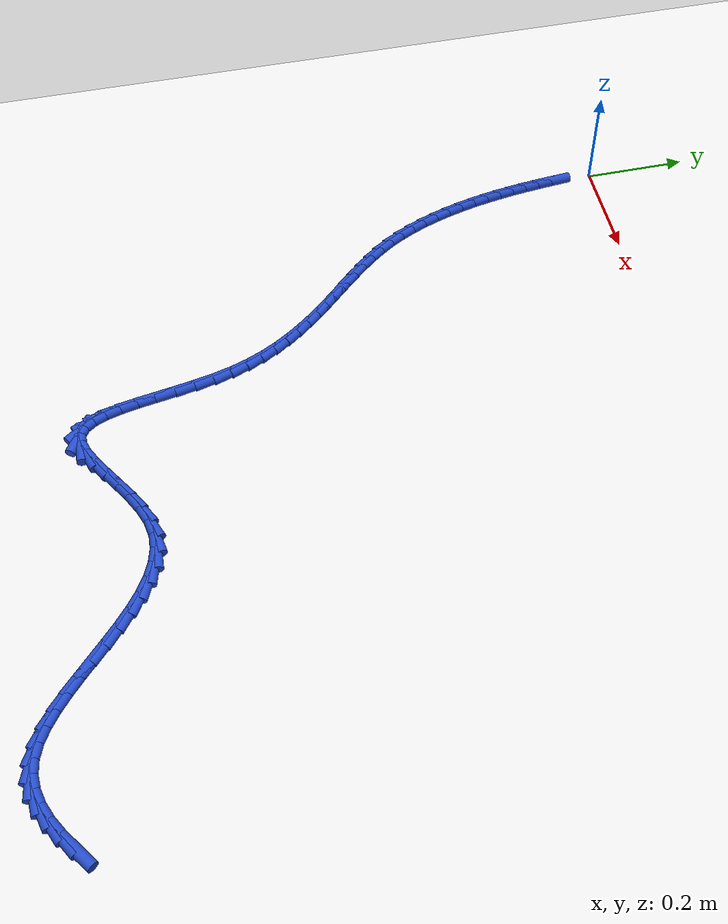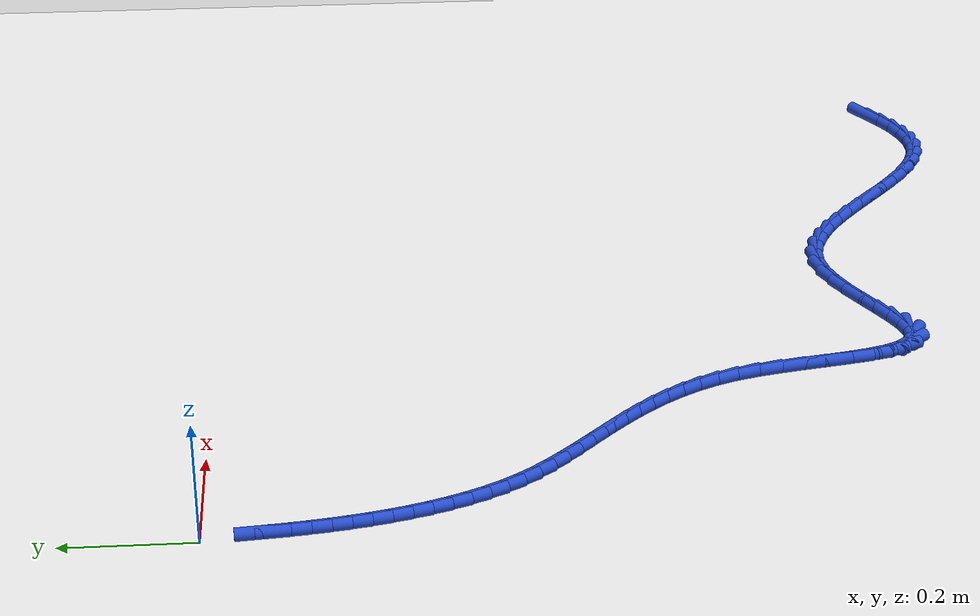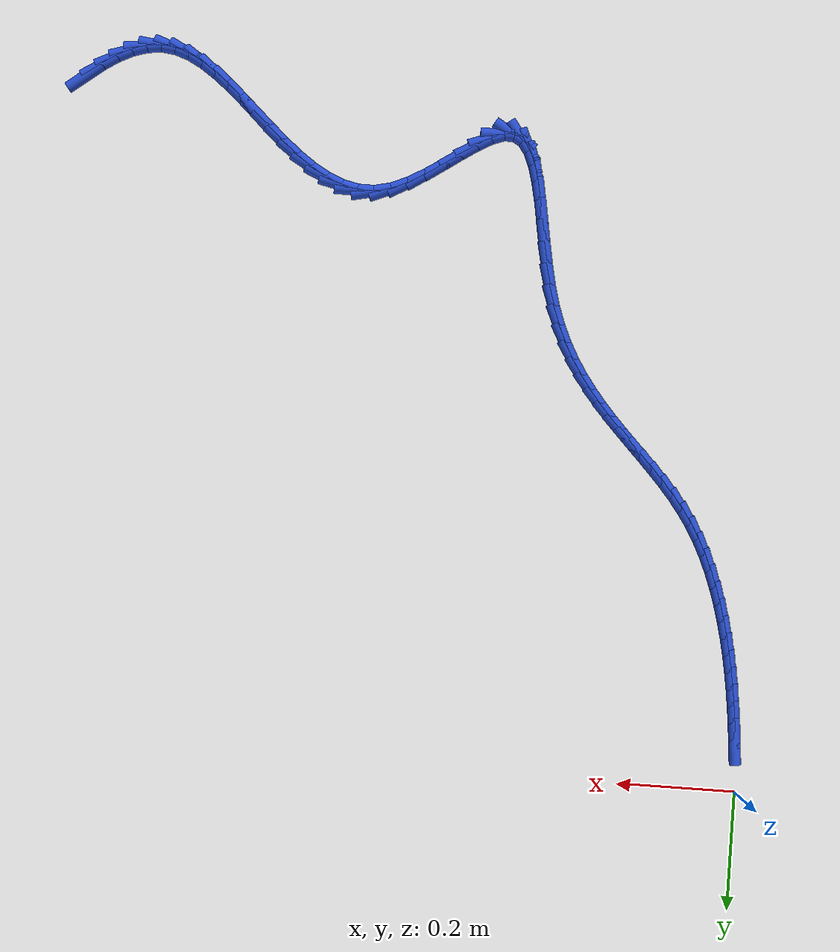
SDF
<sdf version="1.6">
 <world name="default">
  <model name="ground_plane">
   <static>1</static>
   <link name="link">
    <collision name="collision">
     <geometry><plane><normal>0 0 1</normal><size>100 100</size></plane></geometry>
     <surface><friction><ode><mu>100</mu><mu2>50</mu2></ode></friction></surface>
    </collision>
    <visual name="visual">
     <cast_shadows>0</cast_shadows>
     <geometry><plane><normal>0 0 1</normal><size>100 100</size></plane></geometry>
     <material>
      <script><uri>file://media/materials/scripts/gazebo.material</uri><name>Gazebo/WhiteGlow</name></script>
     </material>
    </visual>
   </link>
  </model>
  <model name="line">
   <link name="link_200">
    <pose>1.1708463890035192 -1.1367669506415619 0.01 0 1.57 0.6574059100987695</pose>
    <collision name="collision">
     <geometry><cylinder><radius>0.01</radius><length>0.08</length></cylinder></geometry>
    </collision>
    <visual name="visual">
     <material>
      <script><name>Gazebo/Blue</name><uri>file://media/materials/scripts/gazebo.material</uri></script>
     </material>
     <geometry><cylinder><radius>0.01</radius><length>0.08</length></cylinder></geometry>
    </visual>
   </link>
   <link name="link_201">
    <pose>1.146443476456671 -1.1556049411198688 0.01 0 1.57 0.5654308349131332</pose>
    <collision name="collision">
     <geometry><cylinder><radius>0.01</radius><length>0.08</length></cylinder></geometry>
    </collision>
    <visual name="visual">
     <material>
      <script><name>Gazebo/Blue</name><uri>file://media/materials/scripts/gazebo.material</uri></script>
     </material>
     <geometry><cylinder><radius>0.01</radius><length>0.08</length></cylinder></geometry>
    </visual>
   </link>
   <link name="link_202">
    <pose>1.12190557429925 -1.171175245292618 0.01 0 1.57 0.44600210805185686</pose>
    <collision name="collision">
     <geometry><cylinder><radius>0.01</radius><length>0.08</length></cylinder></geometry>
    </collision>
    <visual name="visual">
     <material>
      <script><name>Gazebo/Blue</name><uri>file://media/materials/scripts/gazebo.material</uri></script>
     </material>
     <geometry><cylinder><radius>0.01</radius><length>0.08</length></cylinder></geometry>
    </visual>
   </link>
   <link name="link_203">
    <pose>1.0973167457102828 -1.1829319947180632 0.01 0 1.57 0.29260035364586207</pose>
    <collision name="collision">
     <geometry><cylinder><radius>0.01</radius><length>0.08</length></cylinder></geometry>
    </collision>
    <visual name="visual">
     <material>
      <script><name>Gazebo/Blue</name><uri>file://media/materials/scripts/gazebo.material</uri></script>
     </material>
     <geometry><cylinder><radius>0.01</radius><length>0.08</length></cylinder></geometry>
    </visual>
   </link>
   <link name="link_204">
    <pose>1.0727610538687935 -1.1903293209544596 0.01 0 1.57 0.10162044880840838</pose>
    <collision name="collision">
     <geometry><cylinder><radius>0.01</radius><length>0.08</length></cylinder></geometry>
    </collision>
    <visual name="visual">
     <material>
      <script><name>Gazebo/Blue</name><uri>file://media/materials/scripts/gazebo.material</uri></script>
     </material>
     <geometry><cylinder><radius>0.01</radius><length>0.08</length></cylinder></geometry>
    </visual>
   </link>
   <link name="link_205">
    <pose>1.048322561953806 -1.1928213555600613 0.01 0 1.57 -0.120702316949975</pose>
    <collision name="collision">
     <geometry><cylinder><radius>0.01</radius><length>0.08</length></cylinder></geometry>
    </collision>
    <visual name="visual">
     <material>
      <script><name>Gazebo/Blue</name><uri>file://media/materials/scripts/gazebo.material</uri></script>
     </material>
     <geometry><cylinder><radius>0.01</radius><length>0.08</length></cylinder></geometry>
    </visual>
   </link>
   <link name="link_206">
    <pose>1.0240832230121522 -1.189881319457902 0.01 0 1.57 -0.332118778977733</pose>
    <collision name="collision">
     <geometry><cylinder><radius>0.01</radius><length>0.08</length></cylinder></geometry>
    </collision>
    <visual name="visual">
     <material>
      <script><name>Gazebo/Blue</name><uri>file://media/materials/scripts/gazebo.material</uri></script>
     </material>
     <geometry><cylinder><radius>0.01</radius><length>0.08</length></cylinder></geometry>
    </visual>
   </link>
   <link name="link_207">
    <pose>1.000057286133325 -1.181594919149552 0.01 0 1.57 -0.49268791195023254</pose>
    <collision name="collision">
     <geometry><cylinder><radius>0.01</radius><length>0.08</length></cylinder></geometry>
    </collision>
    <visual name="visual">
     <material>
      <script><name>Gazebo/Blue</name><uri>file://media/materials/scripts/gazebo.material</uri></script>
     </material>
     <geometry><cylinder><radius>0.01</radius><length>0.08</length></cylinder></geometry>
    </visual>
   </link>
   <link name="link_208">
    <pose>0.9761785433722953 -1.1687757177535312 0.01 0 1.57 -0.606039997069771</pose>
    <collision name="collision">
     <geometry><cylinder><radius>0.01</radius><length>0.08</length></cylinder></geometry>
    </collision>
    <visual name="visual">
     <material>
      <script><name>Gazebo/Blue</name><uri>file://media/materials/scripts/gazebo.material</uri></script>
     </material>
     <geometry><cylinder><radius>0.01</radius><length>0.08</length></cylinder></geometry>
    </visual>
   </link>
   <link name="link_209">
    <pose>0.9523761021991188 -1.1522796576053513 0.01 0 1.57 -0.681857930523067</pose>
    <collision name="collision">
     <geometry><cylinder><radius>0.01</radius><length>0.08</length></cylinder></geometry>
    </collision>
    <visual name="visual">
     <material>
      <script><name>Gazebo/Blue</name><uri>file://media/materials/scripts/gazebo.material</uri></script>
     </material>
     <geometry><cylinder><radius>0.01</radius><length>0.08</length></cylinder></geometry>
    </visual>
   </link>
   <link name="link_210">
    <pose>0.9285790700838554 -1.1329626810405264 0.01 0 1.57 -0.7282979259439852</pose>
    <collision name="collision">
     <geometry><cylinder><radius>0.01</radius><length>0.08</length></cylinder></geometry>
    </collision>
    <visual name="visual">
     <material>
      <script><name>Gazebo/Blue</name><uri>file://media/materials/scripts/gazebo.material</uri></script>
     </material>
     <geometry><cylinder><radius>0.01</radius><length>0.08</length></cylinder></geometry>
    </visual>
   </link>
   <link name="link_211">
    <pose>0.9047165544965615 -1.111680730394569 0.01 0 1.57 -0.7507512539377706</pose>
    <collision name="collision">
     <geometry><cylinder><radius>0.01</radius><length>0.08</length></cylinder></geometry>
    </collision>
    <visual name="visual">
     <material>
      <script><name>Gazebo/Blue</name><uri>file://media/materials/scripts/gazebo.material</uri></script>
     </material>
     <geometry><cylinder><radius>0.01</radius><length>0.08</length></cylinder></geometry>
    </visual>
   </link>
   <link name="link_212">
    <pose>0.8807176629072969 -1.0892897480029928 0.01 0 1.57 -0.7520683423218283</pose>
    <collision name="collision">
     <geometry><cylinder><radius>0.01</radius><length>0.08</length></cylinder></geometry>
    </collision>
    <visual name="visual">
     <material>
      <script><name>Gazebo/Blue</name><uri>file://media/materials/scripts/gazebo.material</uri></script>
     </material>
     <geometry><cylinder><radius>0.01</radius><length>0.08</length></cylinder></geometry>
    </visual>
   </link>
   <link name="link_213">
    <pose>0.8565115027861177 -1.0666456762013106 0.01 0 1.57 -0.7329353554186832</pose>
    <collision name="collision">
     <geometry><cylinder><radius>0.01</radius><length>0.08</length></cylinder></geometry>
    </collision>
    <visual name="visual">
     <material>
      <script><name>Gazebo/Blue</name><uri>file://media/materials/scripts/gazebo.material</uri></script>
     </material>
     <geometry><cylinder><radius>0.01</radius><length>0.08</length></cylinder></geometry>
    </visual>
   </link>
   <link name="link_214">
    <pose>0.8320271816030834 -1.0446044573250357 0.01 0 1.57 -0.6920693695669294</pose>
    <collision name="collision">
     <geometry><cylinder><radius>0.01</radius><length>0.08</length></cylinder></geometry>
    </collision>
    <visual name="visual">
     <material>
      <script><name>Gazebo/Blue</name><uri>file://media/materials/scripts/gazebo.material</uri></script>
     </material>
     <geometry><cylinder><radius>0.01</radius><length>0.08</length></cylinder></geometry>
    </visual>
   </link>
   <link name="link_215">
    <pose>0.8071938068282517 -1.0240220337096813 0.01 0 1.57 -0.6262439224082714</pose>
    <collision name="collision">
     <geometry><cylinder><radius>0.01</radius><length>0.08</length></cylinder></geometry>
    </collision>
    <visual name="visual">
     <material>
      <script><name>Gazebo/Blue</name><uri>file://media/materials/scripts/gazebo.material</uri></script>
     </material>
     <geometry><cylinder><radius>0.01</radius><length>0.08</length></cylinder></geometry>
    </visual>
   </link>
   <link name="link_216">
    <pose>0.7819404859316791 -1.005754347690759 0.01 0 1.57 -0.530377713950852</pose>
    <collision name="collision">
     <geometry><cylinder><radius>0.01</radius><length>0.08</length></cylinder></geometry>
    </collision>
    <visual name="visual">
     <material>
      <script><name>Gazebo/Blue</name><uri>file://media/materials/scripts/gazebo.material</uri></script>
     </material>
     <geometry><cylinder><radius>0.01</radius><length>0.08</length></cylinder></geometry>
    </visual>
   </link>
   <link name="link_217">
    <pose>0.7561963263834255 -0.9906573416037838 0.01 0 1.57 -0.3983357734455049</pose>
    <collision name="collision">
     <geometry><cylinder><radius>0.01</radius><length>0.08</length></cylinder></geometry>
    </collision>
    <visual name="visual">
     <material>
      <script><name>Gazebo/Blue</name><uri>file://media/materials/scripts/gazebo.material</uri></script>
     </material>
     <geometry><cylinder><radius>0.01</radius><length>0.08</length></cylinder></geometry>
    </visual>
   </link>
   <link name="link_218">
    <pose>0.7298904356535473 -0.9795869577842675 0.01 0 1.57 -0.22578493879555625</pose>
    <collision name="collision">
     <geometry><cylinder><radius>0.01</radius><length>0.08</length></cylinder></geometry>
    </collision>
    <visual name="visual">
     <material>
      <script><name>Gazebo/Blue</name><uri>file://media/materials/scripts/gazebo.material</uri></script>
     </material>
     <geometry><cylinder><radius>0.01</radius><length>0.08</length></cylinder></geometry>
    </visual>
   </link>
   <link name="link_219">
    <pose>0.7029519212121043 -0.9733991385677246 0.01 0 1.57 -0.016253245569164774</pose>
    <collision name="collision">
     <geometry><cylinder><radius>0.01</radius><length>0.08</length></cylinder></geometry>
    </collision>
    <visual name="visual">
     <material>
      <script><name>Gazebo/Blue</name><uri>file://media/materials/scripts/gazebo.material</uri></script>
     </material>
     <geometry><cylinder><radius>0.01</radius><length>0.08</length></cylinder></geometry>
    </visual>
   </link>
   <link name="link_220">
    <pose>0.6753098905291525 -0.9729498262896668 0.01 0 1.57 0.2111452177237935</pose>
    <collision name="collision">
     <geometry><cylinder><radius>0.01</radius><length>0.08</length></cylinder></geometry>
    </collision>
    <visual name="visual">
     <material>
      <script><name>Gazebo/Blue</name><uri>file://media/materials/scripts/gazebo.material</uri></script>
     </material>
     <geometry><cylinder><radius>0.01</radius><length>0.08</length></cylinder></geometry>
    </visual>
   </link>
   <link name="link_221">
    <pose>0.6469056986590209 -0.9790379802593401 0.01 0 1.57 0.3956587878751074</pose>
    <collision name="collision">
     <geometry><cylinder><radius>0.01</radius><length>0.08</length></cylinder></geometry>
    </collision>
    <visual name="visual">
     <material>
      <script><name>Gazebo/Blue</name><uri>file://media/materials/scripts/gazebo.material</uri></script>
     </material>
     <geometry><cylinder><radius>0.01</radius><length>0.08</length></cylinder></geometry>
    </visual>
   </link>
   <link name="link_222">
    <pose>0.6179682455938011 -0.9911247301877861 0.01 0 1.57 0.509983245729886</pose>
    <collision name="collision">
     <geometry><cylinder><radius>0.01</radius><length>0.08</length></cylinder></geometry>
    </collision>
    <visual name="visual">
     <material>
      <script><name>Gazebo/Blue</name><uri>file://media/materials/scripts/gazebo.material</uri></script>
     </material>
     <geometry><cylinder><radius>0.01</radius><length>0.08</length></cylinder></geometry>
    </visual>
   </link>
   <link name="link_223">
    <pose>0.5890172645934387 -1.0073180769259247 0.01 0 1.57 0.5730843275138547</pose>
    <collision name="collision">
     <geometry><cylinder><radius>0.01</radius><length>0.08</length></cylinder></geometry>
    </collision>
    <visual name="visual">
     <material>
      <script><name>Gazebo/Blue</name><uri>file://media/materials/scripts/gazebo.material</uri></script>
     </material>
     <geometry><cylinder><radius>0.01</radius><length>0.08</length></cylinder></geometry>
    </visual>
   </link>
   <link name="link_224">
    <pose>0.5605853941948191 -1.0256659783220008 0.01 0 1.57 0.595474707714814</pose>
    <collision name="collision">
     <geometry><cylinder><radius>0.01</radius><length>0.08</length></cylinder></geometry>
    </collision>
    <visual name="visual">
     <material>
      <script><name>Gazebo/Blue</name><uri>file://media/materials/scripts/gazebo.material</uri></script>
     </material>
     <geometry><cylinder><radius>0.01</radius><length>0.08</length></cylinder></geometry>
    </visual>
   </link>
   <link name="link_225">
    <pose>0.5332052729348314 -1.0442163922242584 0.01 0 1.57 0.5772919090836378</pose>
    <collision name="collision">
     <geometry><cylinder><radius>0.01</radius><length>0.08</length></cylinder></geometry>
    </collision>
    <visual name="visual">
     <material>
      <script><name>Gazebo/Blue</name><uri>file://media/materials/scripts/gazebo.material</uri></script>
     </material>
     <geometry><cylinder><radius>0.01</radius><length>0.08</length></cylinder></geometry>
    </visual>
   </link>
   <link name="link_226">
    <pose>0.5074095393503617 -1.0610172764809425 0.01 0 1.57 0.5053048383841612</pose>
    <collision name="collision">
     <geometry><cylinder><radius>0.01</radius><length>0.08</length></cylinder></geometry>
    </collision>
    <visual name="visual">
     <material>
      <script><name>Gazebo/Blue</name><uri>file://media/materials/scripts/gazebo.material</uri></script>
     </material>
     <geometry><cylinder><radius>0.01</radius><length>0.08</length></cylinder></geometry>
    </visual>
   </link>
   <link name="link_227">
    <pose>0.4837308319782965 -1.0741165889402973 0.01 0 1.57 0.340293735597181</pose>
    <collision name="collision">
     <geometry><cylinder><radius>0.01</radius><length>0.08</length></cylinder></geometry>
    </collision>
    <visual name="visual">
     <material>
      <script><name>Gazebo/Blue</name><uri>file://media/materials/scripts/gazebo.material</uri></script>
     </material>
     <geometry><cylinder><radius>0.01</radius><length>0.08</length></cylinder></geometry>
    </visual>
   </link>
   <link name="link_228">
    <pose>0.4627017893555246 -1.081562287450567 0.01 0 1.57 -0.00816704960264608</pose>
    <collision name="collision">
     <geometry><cylinder><radius>0.01</radius><length>0.08</length></cylinder></geometry>
    </collision>
    <visual name="visual">
     <material>
      <script><name>Gazebo/Blue</name><uri>file://media/materials/scripts/gazebo.material</uri></script>
     </material>
     <geometry><cylinder><radius>0.01</radius><length>0.08</length></cylinder></geometry>
    </visual>
   </link>
   <link name="link_229">
    <pose>0.44485006863575194 -1.081416488320307 0.01 0 1.57 -0.5340644707419425</pose>
    <collision name="collision">
     <geometry><cylinder><radius>0.01</radius><length>0.08</length></cylinder></geometry>
    </collision>
    <visual name="visual">
     <material>
      <script><name>Gazebo/Blue</name><uri>file://media/materials/scripts/gazebo.material</uri></script>
     </material>
     <geometry><cylinder><radius>0.01</radius><length>0.08</length></cylinder></geometry>
    </visual>
   </link>
   <link name="link_230">
    <pose>0.4303221189116722 -1.0728248059563692 0.01 0 1.57 -0.9411846215895723</pose>
    <collision name="collision">
     <geometry><cylinder><radius>0.01</radius><length>0.08</length></cylinder></geometry>
    </collision>
    <visual name="visual">
     <material>
      <script><name>Gazebo/Blue</name><uri>file://media/materials/scripts/gazebo.material</uri></script>
     </material>
     <geometry><cylinder><radius>0.01</radius><length>0.08</length></cylinder></geometry>
    </visual>
   </link>
   <link name="link_231">
    <pose>0.41862057935642294 -1.0567627395315367 0.01 0 1.57 -1.1718499517752976</pose>
    <collision name="collision">
     <geometry><cylinder><radius>0.01</radius><length>0.08</length></cylinder></geometry>
    </collision>
    <visual name="visual">
     <material>
      <script><name>Gazebo/Blue</name><uri>file://media/materials/scripts/gazebo.material</uri></script>
     </material>
     <geometry><cylinder><radius>0.01</radius><length>0.08</length></cylinder></geometry>
    </visual>
   </link>
   <link name="link_232">
    <pose>0.4091860222404987 -1.034382199417251 0.01 0 1.57 -1.2973226915202842</pose>
    <collision name="collision">
     <geometry><cylinder><radius>0.01</radius><length>0.08</length></cylinder></geometry>
    </collision>
    <visual name="visual">
     <material>
      <script><name>Gazebo/Blue</name><uri>file://media/materials/scripts/gazebo.material</uri></script>
     </material>
     <geometry><cylinder><radius>0.01</radius><length>0.08</length></cylinder></geometry>
    </visual>
   </link>
   <link name="link_233">
    <pose>0.40145901983439325 -1.0068350959849535 0.01 0 1.57 -1.3652943702652076</pose>
    <collision name="collision">
     <geometry><cylinder><radius>0.01</radius><length>0.08</length></cylinder></geometry>
    </collision>
    <visual name="visual">
     <material>
      <script><name>Gazebo/Blue</name><uri>file://media/materials/scripts/gazebo.material</uri></script>
     </material>
     <geometry><cylinder><radius>0.01</radius><length>0.08</length></cylinder></geometry>
    </visual>
   </link>
   <link name="link_234">
    <pose>0.394880144408601 -0.9752733396060868 0.01 0 1.57 -1.398512274618522</pose>
    <collision name="collision">
     <geometry><cylinder><radius>0.01</radius><length>0.08</length></cylinder></geometry>
    </collision>
    <visual name="visual">
     <material>
      <script><name>Gazebo/Blue</name><uri>file://media/materials/scripts/gazebo.material</uri></script>
     </material>
     <geometry><cylinder><radius>0.01</radius><length>0.08</length></cylinder></geometry>
    </visual>
   </link>
   <link name="link_235">
    <pose>0.3888899682336161 -0.9408488406520923 0.01 0 1.57 -1.4073080977991552</pose>
    <collision name="collision">
     <geometry><cylinder><radius>0.01</radius><length>0.08</length></cylinder></geometry>
    </collision>
    <visual name="visual">
     <material>
      <script><name>Gazebo/Blue</name><uri>file://media/materials/scripts/gazebo.material</uri></script>
     </material>
     <geometry><cylinder><radius>0.01</radius><length>0.08</length></cylinder></geometry>
    </visual>
   </link>
   <link name="link_236">
    <pose>0.38292906357993234 -0.9047135094944102 0.01 0 1.57 -1.395711745107501</pose>
    <collision name="collision">
     <geometry><cylinder><radius>0.01</radius><length>0.08</length></cylinder></geometry>
    </collision>
    <visual name="visual">
     <material>
      <script><name>Gazebo/Blue</name><uri>file://media/materials/scripts/gazebo.material</uri></script>
     </material>
     <geometry><cylinder><radius>0.01</radius><length>0.08</length></cylinder></geometry>
    </visual>
   </link>
   <link name="link_237">
    <pose>0.37643800271804406 -0.8680192565044844 0.01 0 1.57 -1.3638206006663176</pose>
    <collision name="collision">
     <geometry><cylinder><radius>0.01</radius><length>0.08</length></cylinder></geometry>
    </collision>
    <visual name="visual">
     <material>
      <script><name>Gazebo/Blue</name><uri>file://media/materials/scripts/gazebo.material</uri></script>
     </material>
     <geometry><cylinder><radius>0.01</radius><length>0.08</length></cylinder></geometry>
    </visual>
   </link>
   <link name="link_238">
    <pose>0.36885735791844526 -0.8319179920537543 0.01 0 1.57 -1.3083735695671959</pose>
    <collision name="collision">
     <geometry><cylinder><radius>0.01</radius><length>0.08</length></cylinder></geometry>
    </collision>
    <visual name="visual">
     <material>
      <script><name>Gazebo/Blue</name><uri>file://media/materials/scripts/gazebo.material</uri></script>
     </material>
     <geometry><cylinder><radius>0.01</radius><length>0.08</length></cylinder></geometry>
    </visual>
   </link>
   <link name="link_239">
    <pose>0.35962833485202705 -0.7975604930467546 0.01 0 1.57 -1.231759939761479</pose>
    <collision name="collision">
     <geometry><cylinder><radius>0.01</radius><length>0.08</length></cylinder></geometry>
    </collision>
    <visual name="visual">
     <material>
      <script><name>Gazebo/Blue</name><uri>file://media/materials/scripts/gazebo.material</uri></script>
     </material>
     <geometry><cylinder><radius>0.01</radius><length>0.08</length></cylinder></geometry>
    </visual>
   </link>
   <link name="link_240">
    <pose>0.3484010128778474 -0.7657237579454643 0.01 0 1.57 -1.1532257085857736</pose>
    <collision name="collision">
     <geometry><cylinder><radius>0.01</radius><length>0.08</length></cylinder></geometry>
    </collision>
    <visual name="visual">
     <material>
      <script><name>Gazebo/Blue</name><uri>file://media/materials/scripts/gazebo.material</uri></script>
     </material>
     <geometry><cylinder><radius>0.01</radius><length>0.08</length></cylinder></geometry>
    </visual>
   </link>
   <link name="link_241">
    <pose>0.3353349049709795 -0.7362731562496564 0.01 0 1.57 -1.0782716284296152</pose>
    <collision name="collision">
     <geometry><cylinder><radius>0.01</radius><length>0.08</length></cylinder></geometry>
    </collision>
    <visual name="visual">
     <material>
      <script><name>Gazebo/Blue</name><uri>file://media/materials/scripts/gazebo.material</uri></script>
     </material>
     <geometry><cylinder><radius>0.01</radius><length>0.08</length></cylinder></geometry>
    </visual>
   </link>
   <link name="link_242">
    <pose>0.320665725778079 -0.7089376949408054 0.01 0 1.57 -1.0092555269542192</pose>
    <collision name="collision">
     <geometry><cylinder><radius>0.01</radius><length>0.08</length></cylinder></geometry>
    </collision>
    <visual name="visual">
     <material>
      <script><name>Gazebo/Blue</name><uri>file://media/materials/scripts/gazebo.material</uri></script>
     </material>
     <geometry><cylinder><radius>0.01</radius><length>0.08</length></cylinder></geometry>
    </visual>
   </link>
   <link name="link_243">
    <pose>0.30462918994580285 -0.6834463810003888 0.01 0 1.57 -0.9482313261799626</pose>
    <collision name="collision">
     <geometry><cylinder><radius>0.01</radius><length>0.08</length></cylinder></geometry>
    </collision>
    <visual name="visual">
     <material>
      <script><name>Gazebo/Blue</name><uri>file://media/materials/scripts/gazebo.material</uri></script>
     </material>
     <geometry><cylinder><radius>0.01</radius><length>0.08</length></cylinder></geometry>
    </visual>
   </link>
   <link name="link_244">
    <pose>0.287461012120806 -0.6595282214098807 0.01 0 1.57 -0.8968294750536089</pose>
    <collision name="collision">
     <geometry><cylinder><radius>0.01</radius><length>0.08</length></cylinder></geometry>
    </collision>
    <visual name="visual">
     <material>
      <script><name>Gazebo/Blue</name><uri>file://media/materials/scripts/gazebo.material</uri></script>
     </material>
     <geometry><cylinder><radius>0.01</radius><length>0.08</length></cylinder></geometry>
    </visual>
   </link>
   <link name="link_245">
    <pose>0.26939690694974566 -0.6369122231507586 0.01 0 1.57 -0.8562437381772917</pose>
    <collision name="collision">
     <geometry><cylinder><radius>0.01</radius><length>0.08</length></cylinder></geometry>
    </collision>
    <visual name="visual">
     <material>
      <script><name>Gazebo/Blue</name><uri>file://media/materials/scripts/gazebo.material</uri></script>
     </material>
     <geometry><cylinder><radius>0.01</radius><length>0.08</length></cylinder></geometry>
    </visual>
   </link>
   <link name="link_246">
    <pose>0.25067258907927753 -0.6153273932044979 0.01 0 1.57 -0.8272974010440416</pose>
    <collision name="collision">
     <geometry><cylinder><radius>0.01</radius><length>0.08</length></cylinder></geometry>
    </collision>
    <visual name="visual">
     <material>
      <script><name>Gazebo/Blue</name><uri>file://media/materials/scripts/gazebo.material</uri></script>
     </material>
     <geometry><cylinder><radius>0.01</radius><length>0.08</length></cylinder></geometry>
    </visual>
   </link>
   <link name="link_247">
    <pose>0.231523773156057 -0.5945027385525735 0.01 0 1.57 -0.8105452632103827</pose>
    <collision name="collision">
     <geometry><cylinder><radius>0.01</radius><length>0.08</length></cylinder></geometry>
    </collision>
    <visual name="visual">
     <material>
      <script><name>Gazebo/Blue</name><uri>file://media/materials/scripts/gazebo.material</uri></script>
     </material>
     <geometry><cylinder><radius>0.01</radius><length>0.08</length></cylinder></geometry>
    </visual>
   </link>
   <link name="link_248">
    <pose>0.2121861738267414 -0.5741672661764631 0.01 0 1.57 -0.8063709316768037</pose>
    <collision name="collision">
     <geometry><cylinder><radius>0.01</radius><length>0.08</length></cylinder></geometry>
    </collision>
    <visual name="visual">
     <material>
      <script><name>Gazebo/Blue</name><uri>file://media/materials/scripts/gazebo.material</uri></script>
     </material>
     <geometry><cylinder><radius>0.01</radius><length>0.08</length></cylinder></geometry>
    </visual>
   </link>
   <link name="link_249">
    <pose>0.19289550573798564 -0.5540499830576409 0.01 0 1.57 -0.81505054067584</pose>
    <collision name="collision">
     <geometry><cylinder><radius>0.01</radius><length>0.08</length></cylinder></geometry>
    </collision>
    <visual name="visual">
     <material>
      <script><name>Gazebo/Blue</name><uri>file://media/materials/scripts/gazebo.material</uri></script>
     </material>
     <geometry><cylinder><radius>0.01</radius><length>0.08</length></cylinder></geometry>
    </visual>
   </link>
   <link name="link_250">
    <pose>0.17388748353644704 -0.5338798961775844 0.01 0 1.57 -0.8367649367783848</pose>
    <collision name="collision">
     <geometry><cylinder><radius>0.01</radius><length>0.08</length></cylinder></geometry>
    </collision>
    <visual name="visual">
     <material>
      <script><name>Gazebo/Blue</name><uri>file://media/materials/scripts/gazebo.material</uri></script>
     </material>
     <geometry><cylinder><radius>0.01</radius><length>0.08</length></cylinder></geometry>
    </visual>
   </link>
   <link name="link_251">
    <pose>0.15539782186878048 -0.5133860125177679 0.01 0 1.57 -0.871550150492874</pose>
    <collision name="collision">
     <geometry><cylinder><radius>0.01</radius><length>0.08</length></cylinder></geometry>
    </collision>
    <visual name="visual">
     <material>
      <script><name>Gazebo/Blue</name><uri>file://media/materials/scripts/gazebo.material</uri></script>
     </material>
     <geometry><cylinder><radius>0.01</radius><length>0.08</length></cylinder></geometry>
    </visual>
   </link>
   <link name="link_252">
    <pose>0.13766223538164324 -0.492297339059669 0.01 0 1.57 -0.9191840194774711</pose>
    <collision name="collision">
     <geometry><cylinder><radius>0.01</radius><length>0.08</length></cylinder></geometry>
    </collision>
    <visual name="visual">
     <material>
      <script><name>Gazebo/Blue</name><uri>file://media/materials/scripts/gazebo.material</uri></script>
     </material>
     <geometry><cylinder><radius>0.01</radius><length>0.08</length></cylinder></geometry>
    </visual>
   </link>
   <link name="link_253">
    <pose>0.12091643872169032 -0.47034288278476194 0.01 0 1.57 -0.9790206164435736</pose>
    <collision name="collision">
     <geometry><cylinder><radius>0.01</radius><length>0.08</length></cylinder></geometry>
    </collision>
    <visual name="visual">
     <material>
      <script><name>Gazebo/Blue</name><uri>file://media/materials/scripts/gazebo.material</uri></script>
     </material>
     <geometry><cylinder><radius>0.01</radius><length>0.08</length></cylinder></geometry>
    </visual>
   </link>
   <link name="link_254">
    <pose>0.10539613228680748 -0.44725167220990586 0.01 0 1.57 -1.046261785124719</pose>
    <collision name="collision">
     <geometry><cylinder><radius>0.01</radius><length>0.08</length></cylinder></geometry>
    </collision>
    <visual name="visual">
     <material>
      <script><name>Gazebo/Blue</name><uri>file://media/materials/scripts/gazebo.material</uri></script>
     </material>
     <geometry><cylinder><radius>0.01</radius><length>0.08</length></cylinder></geometry>
    </visual>
   </link>
   <link name="link_255">
    <pose>0.09127516736536086 -0.42284621367938063 0.01 0 1.57 -1.108507429892515</pose>
    <collision name="collision">
     <geometry><cylinder><radius>0.01</radius><length>0.08</length></cylinder></geometry>
    </collision>
    <visual name="visual">
     <material>
      <script><name>Gazebo/Blue</name><uri>file://media/materials/scripts/gazebo.material</uri></script>
     </material>
     <geometry><cylinder><radius>0.01</radius><length>0.08</length></cylinder></geometry>
    </visual>
   </link>
   <link name="link_256">
    <pose>0.07852383089905726 -0.39725667767386547 0.01 0 1.57 -1.1639448185159165</pose>
    <collision name="collision">
     <geometry><cylinder><radius>0.01</radius><length>0.08</length></cylinder></geometry>
    </collision>
    <visual name="visual">
     <material>
      <script><name>Gazebo/Blue</name><uri>file://media/materials/scripts/gazebo.material</uri></script>
     </material>
     <geometry><cylinder><radius>0.01</radius><length>0.08</length></cylinder></geometry>
    </visual>
   </link>
   <link name="link_257">
    <pose>0.0670705908417512 -0.370676439272452 0.01 0 1.57 -1.2133043538335302</pose>
    <collision name="collision">
     <geometry><cylinder><radius>0.01</radius><length>0.08</length></cylinder></geometry>
    </collision>
    <visual name="visual">
     <material>
      <script><name>Gazebo/Blue</name><uri>file://media/materials/scripts/gazebo.material</uri></script>
     </material>
     <geometry><cylinder><radius>0.01</radius><length>0.08</length></cylinder></geometry>
    </visual>
   </link>
   <link name="link_258">
    <pose>0.05684391514729743 -0.34329887355423166 0.01 0 1.57 -1.2572870302672672</pose>
    <collision name="collision">
     <geometry><cylinder><radius>0.01</radius><length>0.08</length></cylinder></geometry>
    </collision>
    <visual name="visual">
     <material>
      <script><name>Gazebo/Blue</name><uri>file://media/materials/scripts/gazebo.material</uri></script>
     </material>
     <geometry><cylinder><radius>0.01</radius><length>0.08</length></cylinder></geometry>
    </visual>
   </link>
   <link name="link_259">
    <pose>0.04777227176955159 -0.31531735559829815 0.01 0 1.57 -1.2965353224057106</pose>
    <collision name="collision">
     <geometry><cylinder><radius>0.01</radius><length>0.08</length></cylinder></geometry>
    </collision>
    <visual name="visual">
     <material>
      <script><name>Gazebo/Blue</name><uri>file://media/materials/scripts/gazebo.material</uri></script>
     </material>
     <geometry><cylinder><radius>0.01</radius><length>0.08</length></cylinder></geometry>
    </visual>
   </link>
   <link name="link_260">
    <pose>0.039784128662368155 -0.2869252604837424 0.01 0 1.57 -1.3316208943180794</pose>
    <collision name="collision">
     <geometry><cylinder><radius>0.01</radius><length>0.08</length></cylinder></geometry>
    </collision>
    <visual name="visual">
     <material>
      <script><name>Gazebo/Blue</name><uri>file://media/materials/scripts/gazebo.material</uri></script>
     </material>
     <geometry><cylinder><radius>0.01</radius><length>0.08</length></cylinder></geometry>
    </visual>
   </link>
   <link name="link_261">
    <pose>0.03280795377960262 -0.25831596328965806 0.01 0 1.57 -1.363042190532415</pose>
    <collision name="collision">
     <geometry><cylinder><radius>0.01</radius><length>0.08</length></cylinder></geometry>
    </collision>
    <visual name="visual">
     <material>
      <script><name>Gazebo/Blue</name><uri>file://media/materials/scripts/gazebo.material</uri></script>
     </material>
     <geometry><cylinder><radius>0.01</radius><length>0.08</length></cylinder></geometry>
    </visual>
   </link>
   <link name="link_262">
    <pose>0.02677221482290573 -0.22968283755398838 0.01 0 1.57 -1.3912568047578846</pose>
    <collision name="collision">
     <geometry><cylinder><radius>0.01</radius><length>0.08</length></cylinder></geometry>
    </collision>
    <visual name="visual">
     <material>
      <script><name>Gazebo/Blue</name><uri>file://media/materials/scripts/gazebo.material</uri></script>
     </material>
     <geometry><cylinder><radius>0.01</radius><length>0.08</length></cylinder></geometry>
    </visual>
   </link>
   <link name="link_263">
    <pose>0.0215973959565675 -0.2011704716418575 0.01 0 1.57 -1.4164478075564368</pose>
    <collision name="collision">
     <geometry><cylinder><radius>0.01</radius><length>0.08</length></cylinder></geometry>
    </collision>
    <visual name="visual">
     <material>
      <script><name>Gazebo/Blue</name><uri>file://media/materials/scripts/gazebo.material</uri></script>
     </material>
     <geometry><cylinder><radius>0.01</radius><length>0.08</length></cylinder></geometry>
    </visual>
   </link>
   <link name="link_264">
    <pose>0.01717502279155876 -0.17274649626611363 0.01 0 1.57 -1.4383408129391932</pose>
    <collision name="collision">
     <geometry><cylinder><radius>0.01</radius><length>0.08</length></cylinder></geometry>
    </collision>
    <visual name="visual">
     <material>
      <script><name>Gazebo/Blue</name><uri>file://media/materials/scripts/gazebo.material</uri></script>
     </material>
     <geometry><cylinder><radius>0.01</radius><length>0.08</length></cylinder></geometry>
    </visual>
   </link>
   <link name="link_265">
    <pose>0.013390057050568541 -0.14433843204683344 0.01 0 1.57 -1.4566750351038122</pose>
    <collision name="collision">
     <geometry><cylinder><radius>0.01</radius><length>0.08</length></cylinder></geometry>
    </collision>
    <visual name="visual">
     <material>
      <script><name>Gazebo/Blue</name><uri>file://media/materials/scripts/gazebo.material</uri></script>
     </material>
     <geometry><cylinder><radius>0.01</radius><length>0.08</length></cylinder></geometry>
    </visual>
   </link>
   <link name="link_266">
    <pose>0.010127460456285374 -0.1158737996040903 0.01 0 1.57 -1.4712697239019932</pose>
    <collision name="collision">
     <geometry><cylinder><radius>0.01</radius><length>0.08</length></cylinder></geometry>
    </collision>
    <visual name="visual">
     <material>
      <script><name>Gazebo/Blue</name><uri>file://media/materials/scripts/gazebo.material</uri></script>
     </material>
     <geometry><cylinder><radius>0.01</radius><length>0.08</length></cylinder></geometry>
    </visual>
   </link>
   <link name="link_267">
    <pose>0.007272194731398229 -0.08728011955796092 0.01 0 1.57 -1.4820233250064279</pose>
    <collision name="collision">
     <geometry><cylinder><radius>0.01</radius><length>0.08</length></cylinder></geometry>
    </collision>
    <visual name="visual">
     <material>
      <script><name>Gazebo/Blue</name><uri>file://media/materials/scripts/gazebo.material</uri></script>
     </material>
     <geometry><cylinder><radius>0.01</radius><length>0.08</length></cylinder></geometry>
    </visual>
   </link>
  </model>
 </world>
</sdf>
